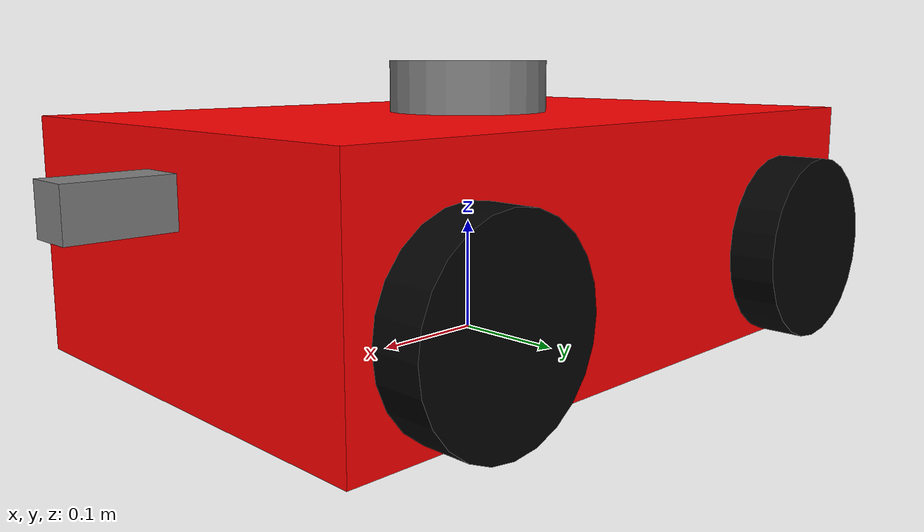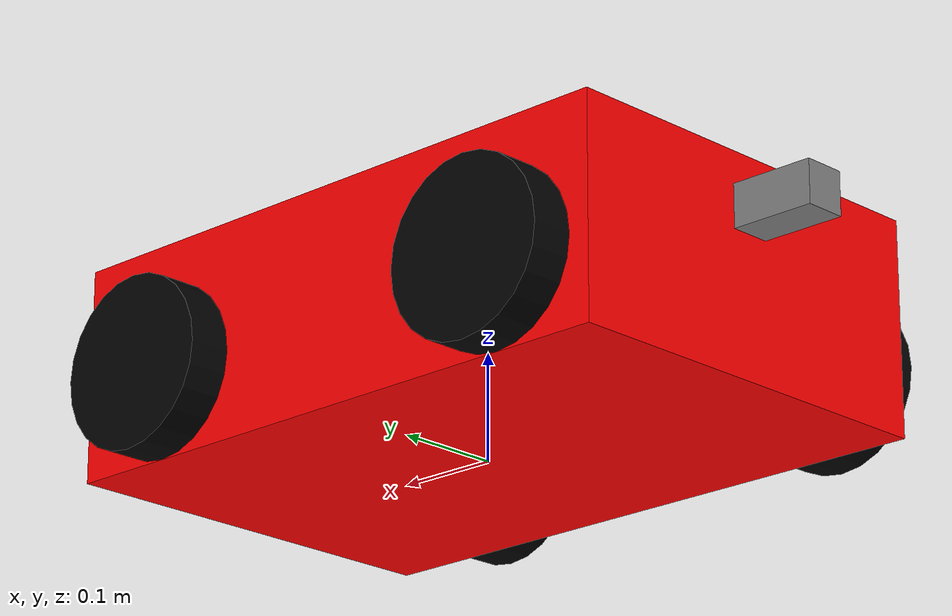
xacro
<?xml version="1.0"?>
<robot xmlns:xacro="http://www.ros.org/wiki/xacro" name="simple_mobile_robot">
    <xacro:include filename="$(find my_first_package)/urdf/wheel.xacro"/>
    <xacro:include filename="$(find my_first_package)/urdf/sensor.xacro"/>

    <xacro:property name="base_length" value="0.6" />
    <xacro:property name="base_width" value="0.4" />
    <xacro:property name="base_height" value="0.2" />

    <xacro:property name="wheel_radius" value="0.08" />
    <xacro:property name="wheel_width" value="0.04" />

    <material name="blue">
        <color rgba="0.1 0.2 0.8 1.0"/>
    </material>

    <material name="black">
        <color rgba="0.01 0.01 0.01 1.0"/>
    </material>

    <material name="gray">
        <color rgba="0.5 0.5 0.5 1.0"/>
    </material>

    <link name="base_link">
        <visual>
            <origin xyz="0.0 0.0 ${base_height / 2}" rpy="0.0 0.0 0.0"/>
            <geometry>
                <box size="${base_length} ${base_width} ${base_height}"/>
            </geometry>
            <material name="">
                <color rgba="1.0 0.0 0.0 1.0"/>
            </material>
        </visual>
        <collision>
            <origin xyz="0.0 0.0 ${base_height / 2}" rpy="0.0 0.0 0.0"/>
            <geometry>
                <box size="${base_length} ${base_width} ${base_height}"/>
            </geometry>
        </collision>
        <inertial>
            <origin xyz="0.0 0.0 ${base_height / 2}" rpy="0.0 0.0 0.0"/>
            <mass value="5.0"/>
            <inertia ixx="0.1" ixy="0.0" ixz="0.0" iyy="0.1" iyz="0.0" izz="0.1"/>
        </inertial>
    </link>

    <!-- Wheels -->

    <xacro:wheel
        prefix="front_left"
        parent="base_link"
        x="${base_length / 3}"
        y="${base_width / 2 + wheel_width / 2}"
        z="${wheel_radius}"
    />

    <xacro:wheel
        prefix="front_right"
        parent="base_link"
        x="${base_length / 3}"
        y="${-base_width / 2 - wheel_width / 2}"
        z="${wheel_radius}"
    />

    <xacro:wheel
        prefix="rear_left"
        parent="base_link"
        x="${-base_length / 3}"
        y="${base_width / 2 + wheel_width / 2}"
        z="${wheel_radius}"
    />

    <xacro:wheel
        prefix="rear_right"
        parent="base_link"
        x="${-base_length / 3}"
        y="${-base_width / 2 - wheel_width / 2}"
        z="${wheel_radius}"
    />

    <!-- Sensors -->
     <xacro:lidar_sensor
        name="lidar"
        parent="base_link"
        x="0"
        y="0"
        z="${base_height + 0.02}"
     />

     <xacro:camera_sensor
        name="front_camera"
        parent="base_link"
        x="${base_length / 2 + 0.04}"
        y="0"
        z="${base_height * 0.75}"
     />

     <xacro:camera_sensor
        name="rear_camera"
        parent="base_link"
        x="${-base_length / 2 - 0.04}"
        y="0"
        z="${base_height * 0.75}"
     />

     <xacro:imu_sensor
        name="imu"
        parent="base_link"
        x="0"
        y="0"
        z="${base_height / 2}"
     />

</robot>

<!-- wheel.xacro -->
<robot xmlns:xacro="http://www.ros.org/wiki/xacro">
    <xacro:macro name="wheel" params="prefix parent x y z">
        <link name="${prefix}_wheel_link">
            <visual>
                <origin xyz="0.0 0.0 0.0" rpy="1.5708 0.0 0.0"/>
                <geometry>
                    <cylinder radius="${wheel_radius}" length="${wheel_width}"/>
                </geometry>
                <material name="black"/>
            </visual>
            <collision>
                <origin xyz="0.0 0.0 0.0" rpy="1.5708 0.0 0.0"/>
                <geometry>
                    <cylinder radius="${wheel_radius}" length="${wheel_width}"/>
                </geometry>
            </collision>
            <inertial>
                <origin xyz="0.0 0.0 0.0" rpy="0.0 0.0 0.0"/>
                <mass value="0.5"/>
                <inertia ixx="0.001" ixy="0.0" ixz="0.0" iyy="0.001" iyz="0.0" izz="0.001"/>
            </inertial>
        </link>

        <joint name="${prefix}_wheel_joint" type="continuous">
            <parent link="${parent}"/>
            <child link="${prefix}_wheel_link"/>
            <origin xyz="${x} ${y} ${z}" rpy="0.0 0.0 0.0"/>
            <axis xyz="0.0 1 0.0"/>
        </joint>
    </xacro:macro>
</robot>

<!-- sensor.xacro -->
<robot xmlns:xacro="http://www.ros.org/wiki/xacro">

    <!-- LiDAR Macro -->
    <xacro:macro name="lidar_sensor" params="name parent x y z">
        <link name="${name}_link">
            <visual>
                <origin xyz="0.0 0.0 0.0" rpy="0.0 0.0 0.0"/>
                <geometry>
                    <cylinder radius="0.07" length="0.05"/>
                </geometry>
                <material name="gray"/>
            </visual>
            <collision>
                <origin xyz="0.0 0.0 0.0" rpy="0.0 0.0 0.0"/>
                <geometry>
                    <cylinder radius="0.07" length="0.05"/>
                </geometry>
            </collision>
            <inertial>
                <origin xyz="0.0 0.0 0.0" rpy="0.0 0.0 0.0"/>
                <mass value="0.2"/>
                <inertia ixx="0.0005" ixy="0.0" ixz="0.0" iyy="0.0005" iyz="0.0" izz="0.0005"/>
            </inertial>
        </link>

        <joint name="${name}_joint" type="fixed">
            <parent link="${parent}"/>
            <child link="${name}_link"/>
            <origin xyz="${x} ${y} ${z}" rpy="0.0 0.0 0.0"/>
        </joint>
    </xacro:macro>

    <!-- Camera Macro -->
    <xacro:macro name="camera_sensor" params="name parent x y z">
        <link name="${name}_link">
            <visual>
                <origin xyz="0.0 0.0 0.0" rpy="0.0 0.0 0.0"/>
                <geometry>
                    <box size="0.08 0.04 0.04"/>
                </geometry>
                <material name="gray"/>
            </visual>
            <collision>
                <origin xyz="0.0 0.0 0.0" rpy="0.0 0.0 0.0"/>
                <geometry>
                    <box size="0.08 0.04 0.04"/>
                </geometry>
            </collision>
            <inertial>
                <origin xyz="0.0 0.0 0.0" rpy="0.0 0.0 0.0"/>
                <mass value="0.1"/>
                <inertia ixx="0.0002" ixy="0.0" ixz="0.0" iyy="0.0002" iyz="0.0" izz="0.0002"/>
            </inertial>
        </link>

        <joint name="${name}_joint" type="fixed">
            <parent link="${parent}"/>
            <child link="${name}_link"/>
            <origin xyz="${x} ${y} ${z}" rpy="0.0 0.0 0.0"/>
        </joint>
    </xacro:macro>

    <!-- IMU Macro -->
    <xacro:macro name="imu_sensor" params="name parent x y z">
        <link name="${name}_link">
            <visual>
                <origin xyz="0.0 0.0 0.0" rpy="0.0 0.0 0.0"/>
                <geometry>
                    <box size="0.05 0.05 0.02"/>
                </geometry>
                <material name="gray"/>
            </visual>
            <collision>
                <origin xyz="0.0 0.0 0.0" rpy="0.0 0.0 0.0"/>
                <geometry>
                    <box size="0.05 0.05 0.02"/>
                </geometry>
            </collision>
            <inertial>
                <origin xyz="0.0 0.0 0.0" rpy="0.0 0.0 0.0"/>
                <mass value="0.5"/>
                <inertia ixx="0.0001" ixy="0.0" ixz="0.0" iyy="0.0001" iyz="0.0" izz="0.0001"/>
            </inertial>
        </link>

        <joint name="${name}_joint" type="fixed">
            <origin xyz="${x} ${y} ${z}" rpy="0.0 0.0 0.0"/>
            <parent link="${parent}"/>
            <child link="${name}_link"/>
        </joint>
    </xacro:macro>
</robot>
